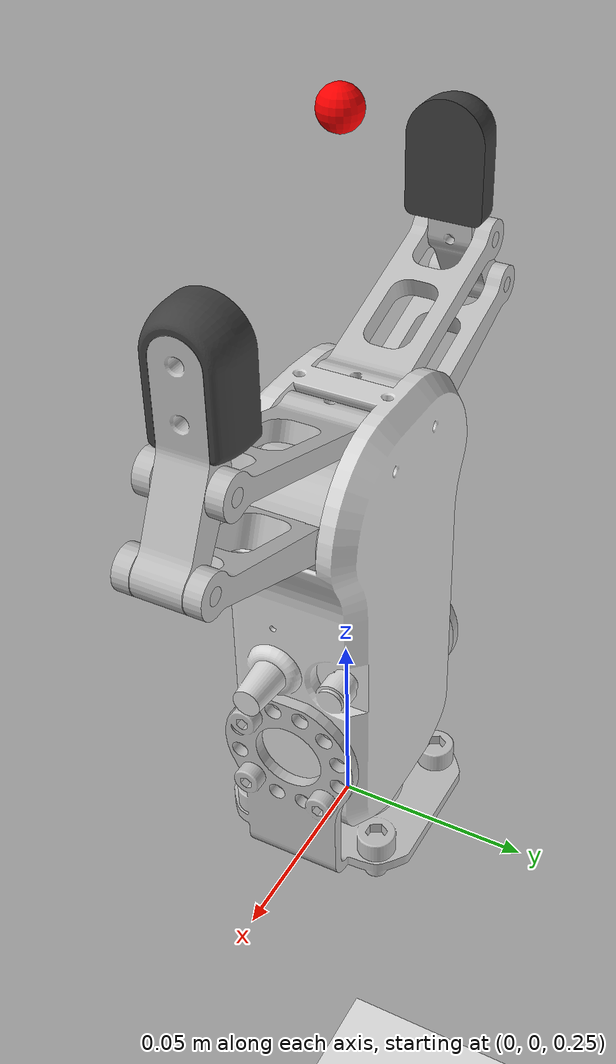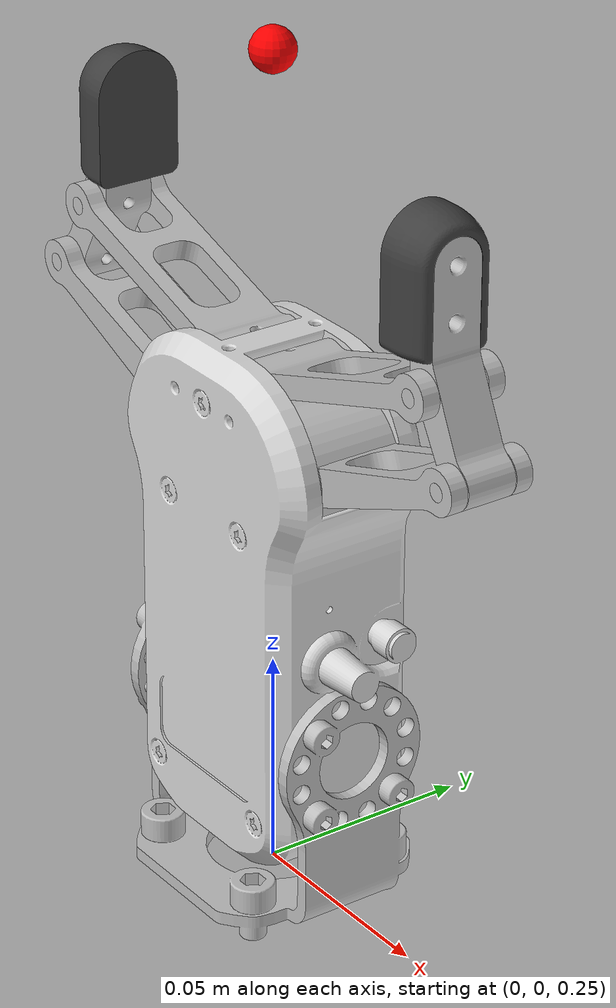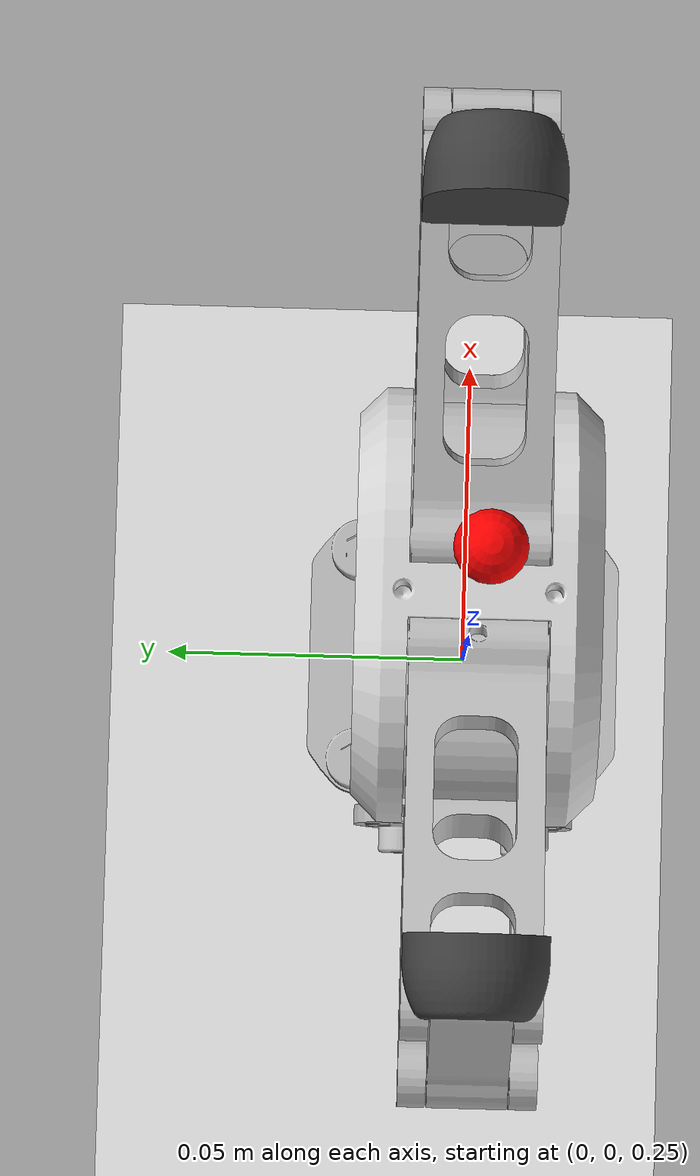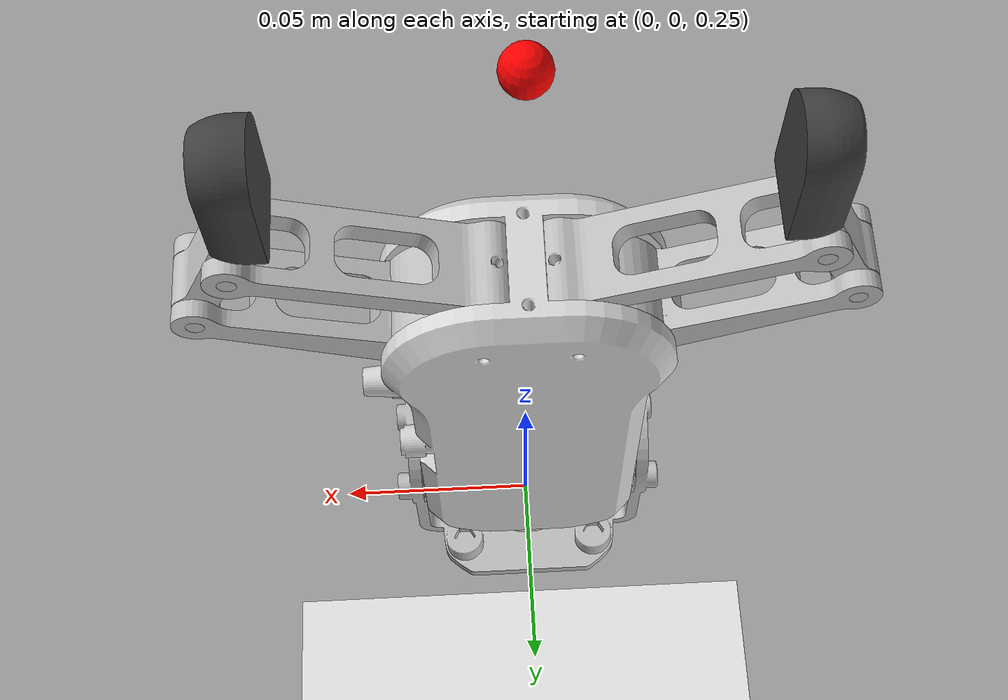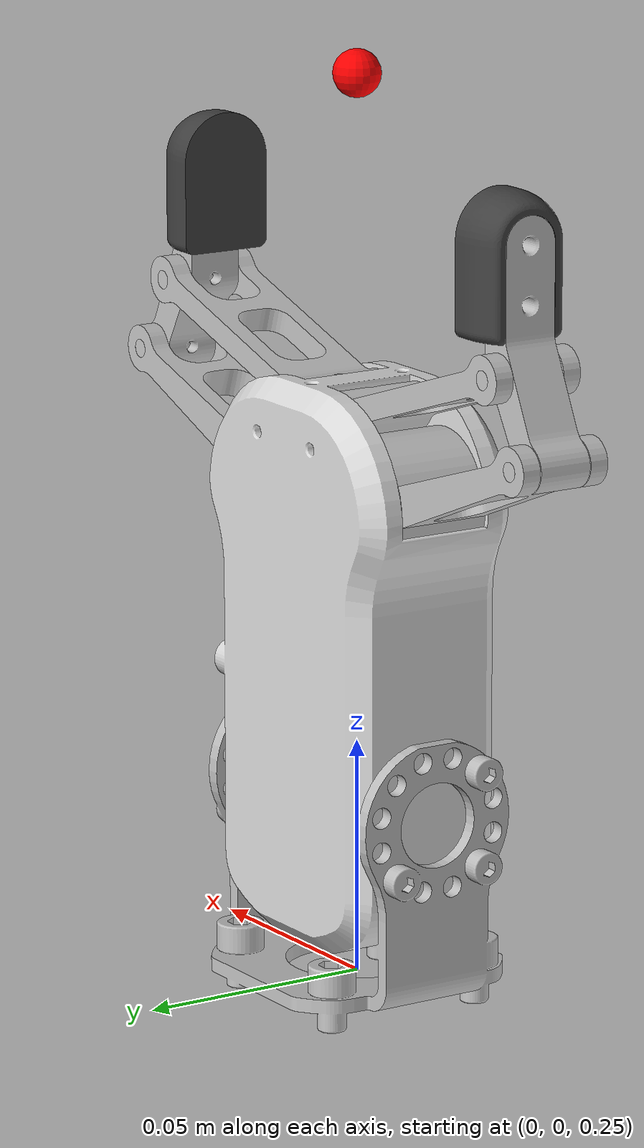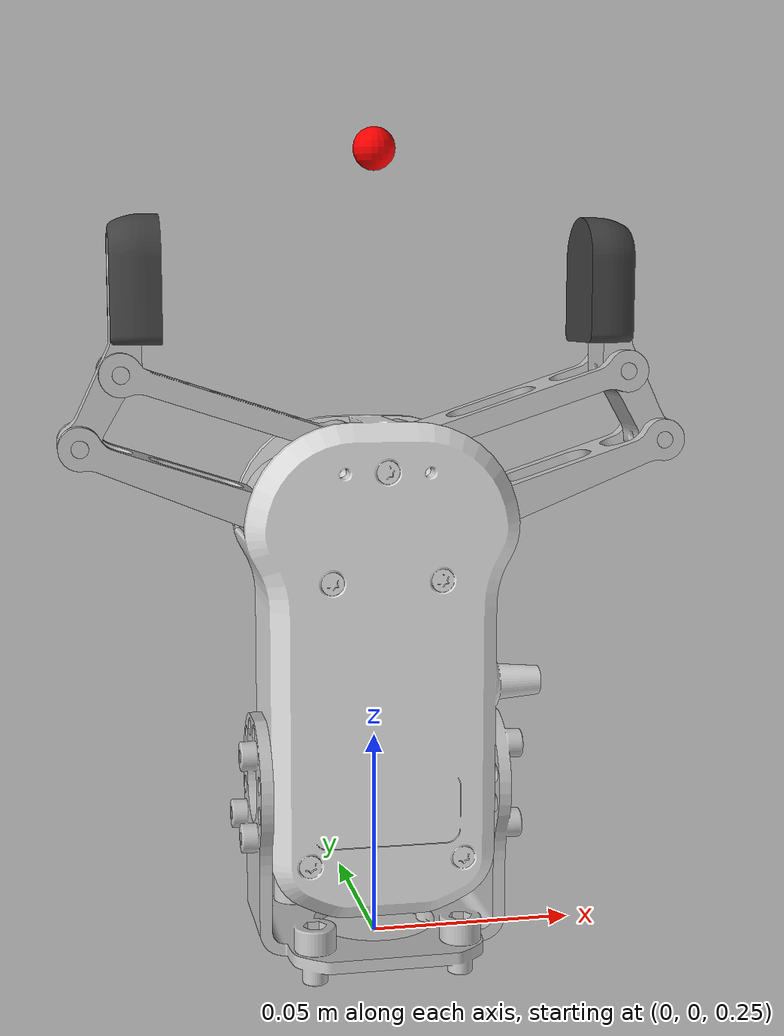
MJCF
<mujoco model="rg2_v1_scene">
  <compiler angle="radian" />
  <option gravity="0 0 -9.81" timestep="0.001" iterations="60"/>

  <include file="rg2_v1_assets.xml"/>
  <include file="rg2_v1_coupling.xml"/>

  <worldbody>
    <light name="key" pos="0 0 1" dir="0 0 -1"/>
    <geom name="floor" type="plane" size="2 2 0.1" rgba="0.9 0.9 0.9 1"/>

    <body name="rg2_mount" pos="0 0 0.25">
      <freejoint/>
      <include file="rg2_v1_gripper_body.xml"/>
    </body>
  </worldbody>
</mujoco>

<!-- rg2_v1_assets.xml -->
<mujocoinclude>
  <default>
    <default class="visual">
      <geom type="mesh" contype="0" conaffinity="0" group="2" rgba="0.75 0.75 0.75 1"/>
    </default>
    <default class="collision">
      <geom type="box" group="3" rgba="0.2 0.6 0.2 0.15"/>
    </default>
  </default>

  <asset>
    <!-- visual meshes (relative to /workspace/mujoco) -->
    <mesh name="rg2_body" file="../onrobot_ros/onrobot_description/meshes/rg2_v1/visual/body.stl"/>
    <mesh name="rg2_single_bracket" file="../onrobot_ros/onrobot_description/meshes/rg2_v1/visual/single_bracket.stl"/>
    <mesh name="rg2_moment_arm" file="../onrobot_ros/onrobot_description/meshes/rg2_v1/visual/moment_arm.stl"/>
    <mesh name="rg2_truss_arm" file="../onrobot_ros/onrobot_description/meshes/rg2_v1/visual/truss_arm.stl"/>
    <mesh name="rg2_finger_tip" file="../onrobot_ros/onrobot_description/meshes/rg2_v1/visual/finger_tip.stl"/>
    <mesh name="rg2_flex_finger" file="../onrobot_ros/onrobot_description/meshes/rg2_v1/visual/flex_finger.stl"/>
  </asset>
</mujocoinclude>

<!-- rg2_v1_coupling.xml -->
<mujocoinclude>
  <equality>
    <!-- Mimic relationships from the URDF (mimic multiplier=1) -->
    <joint joint1="rg2_gripper_joint" joint2="rg2_gripper_mirror_joint" polycoef="0 1 0 0 0"
           solref="0.03 1" solimp="0.9 0.95 0.001 0.5 2"/>

    <joint joint1="rg2_gripper_joint" joint2="rg2_finger_1_truss_arm_joint" polycoef="0 1 0 0 0"
           solref="0.03 1" solimp="0.9 0.95 0.001 0.5 2"/>
    <joint joint1="rg2_gripper_joint" joint2="rg2_finger_1_finger_tip_joint" polycoef="0 1 0 0 0"
           solref="0.03 1" solimp="0.9 0.95 0.001 0.5 2"/>

    <joint joint1="rg2_gripper_joint" joint2="rg2_finger_2_truss_arm_joint" polycoef="0 1 0 0 0"
           solref="0.03 1" solimp="0.9 0.95 0.001 0.5 2"/>
    <joint joint1="rg2_gripper_joint" joint2="rg2_finger_2_finger_tip_joint" polycoef="0 1 0 0 0"
           solref="0.03 1" solimp="0.9 0.95 0.001 0.5 2"/>
  </equality>

  <actuator>
    <position name="rg2_open_close" joint="rg2_gripper_joint"
              kp="40" kv="5"
              ctrlrange="0 1.3" forcerange="-50 50"/>
  </actuator>
</mujocoinclude>

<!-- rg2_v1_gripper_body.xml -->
<mujocoinclude>
  <!-- Attach this body under your robot wrist/end-effector body -->
  <body name="rg2">
    <!-- bracket (link: gripper_bracket) -->
    <geom class="visual" mesh="rg2_single_bracket"/>
    <inertial pos="0 0 0" mass="0.09" diaginertia="0.001 0.001 0.001"/>

    <!-- body (link: gripper_body), fixed joint at origin[single_bracket] -->
    <body name="rg2_body" pos="0 0 0.05">
      <geom class="visual" mesh="rg2_body" rgba="0.85 0.85 0.85 1"/>
      <inertial pos="0 0 0" mass="0.65" diaginertia="0.001 0.001 0.001"/>

      <!-- grasp frame -->
      <site name="rg2_grasp_frame" pos="0 0 0.14" size="0.005" rgba="1 0 0 1"/>

      <!-- Finger 1 (master) -->
      <body name="rg2_finger_1_origin" euler="0 0 0">
        <inertial pos="0 0 0" mass="0.001" diaginertia="1e-6 1e-6 1e-6"/>

        <body name="rg2_finger_1_moment_arm" pos="-0.017 0 0.055" euler="0 -0.772 0">
          <joint name="rg2_gripper_joint" type="hinge" axis="0 1 0" range="0 1.3"
                 damping="0.4" armature="0.02" frictionloss="0.02"/>
          <geom class="visual" mesh="rg2_moment_arm"/>
          <inertial pos="0 0 0" mass="0.001" diaginertia="1e-6 1e-6 1e-6"/>
        </body>

        <body name="rg2_finger_1_truss_arm" pos="-0.0075 0 0.0715" euler="0 -0.772 0">
          <joint name="rg2_finger_1_truss_arm_joint" type="hinge" axis="0 1 0" range="0 1.3"
                 damping="0.3" armature="0.01" frictionloss="0.01"/>
          <geom class="visual" mesh="rg2_truss_arm"/>
          <inertial pos="0 0 0" mass="0.001" diaginertia="1e-6 1e-6 1e-6"/>

          <body name="rg2_finger_1_finger_tip" pos="-0.0256 0 0.04868" euler="0 0.772 0">
            <joint name="rg2_finger_1_finger_tip_joint" type="hinge" axis="0 -1 0" range="0 1.3"
                   damping="0.25" armature="0.01" frictionloss="0.01"/>
            <geom class="visual" mesh="rg2_finger_tip"/>
            <inertial pos="0 0 0" mass="0.001" diaginertia="1e-6 1e-6 1e-6"/>

            <body name="rg2_finger_1_flex_finger" pos="0.03059 0 0.0172">
              <geom class="visual" mesh="rg2_flex_finger" rgba="0.25 0.25 0.25 1"/>
              <inertial pos="0 0 0" mass="0.001" diaginertia="1e-6 1e-6 1e-6"/>
              <geom class="collision" size="0.006 0.010 0.018" pos="-0.012 0 0.015"/>
            </body>
          </body>
        </body>
      </body>

      <!-- Finger 2 (mirror): yaw pi -->
      <body name="rg2_finger_2_origin" euler="0 0 3.141592653589793">
        <inertial pos="0 0 0" mass="0.001" diaginertia="1e-6 1e-6 1e-6"/>

        <body name="rg2_finger_2_moment_arm" pos="-0.017 0 0.055" euler="0 -0.772 0">
          <joint name="rg2_gripper_mirror_joint" type="hinge" axis="0 1 0" range="0 1.3"
                 damping="0.4" armature="0.02" frictionloss="0.02"/>
          <geom class="visual" mesh="rg2_moment_arm"/>
          <inertial pos="0 0 0" mass="0.001" diaginertia="1e-6 1e-6 1e-6"/>
        </body>

        <body name="rg2_finger_2_truss_arm" pos="-0.0075 0 0.0715" euler="0 -0.772 0">
          <joint name="rg2_finger_2_truss_arm_joint" type="hinge" axis="0 1 0" range="0 1.3"
                 damping="0.3" armature="0.01" frictionloss="0.01"/>
          <geom class="visual" mesh="rg2_truss_arm"/>
          <inertial pos="0 0 0" mass="0.001" diaginertia="1e-6 1e-6 1e-6"/>

          <body name="rg2_finger_2_finger_tip" pos="-0.0256 0 0.04868" euler="0 0.772 0">
            <joint name="rg2_finger_2_finger_tip_joint" type="hinge" axis="0 -1 0" range="0 1.3"
                   damping="0.25" armature="0.01" frictionloss="0.01"/>
            <geom class="visual" mesh="rg2_finger_tip"/>
            <inertial pos="0 0 0" mass="0.001" diaginertia="1e-6 1e-6 1e-6"/>

            <body name="rg2_finger_2_flex_finger" pos="0.03059 0 0.0172">
              <geom class="visual" mesh="rg2_flex_finger" rgba="0.25 0.25 0.25 1"/>
              <inertial pos="0 0 0" mass="0.001" diaginertia="1e-6 1e-6 1e-6"/>
              <geom class="collision" size="0.006 0.010 0.018" pos="-0.012 0 0.015"/>
            </body>
          </body>
        </body>
      </body>

      <!-- collision proxy for the main body (tune as needed) -->
      <geom class="collision" size="0.028 0.028 0.035" pos="-0.008 0 0.055"/>
    </body>
  </body>
</mujocoinclude>
